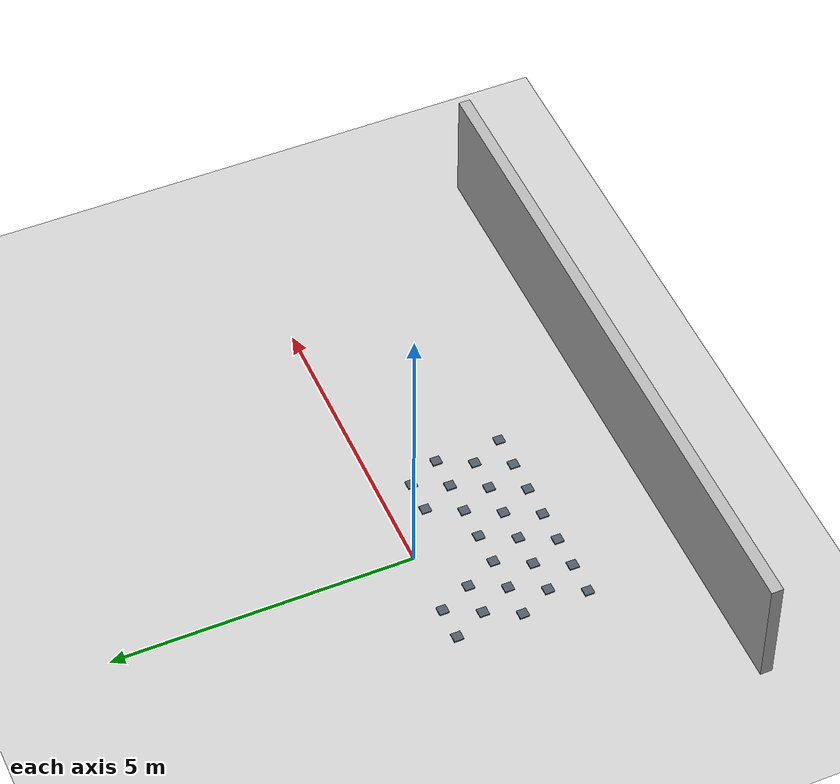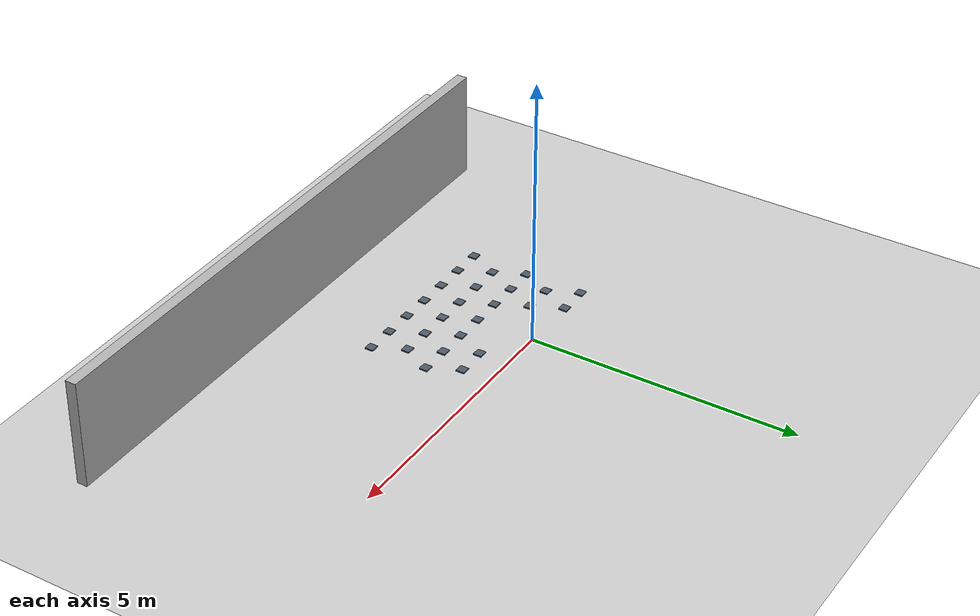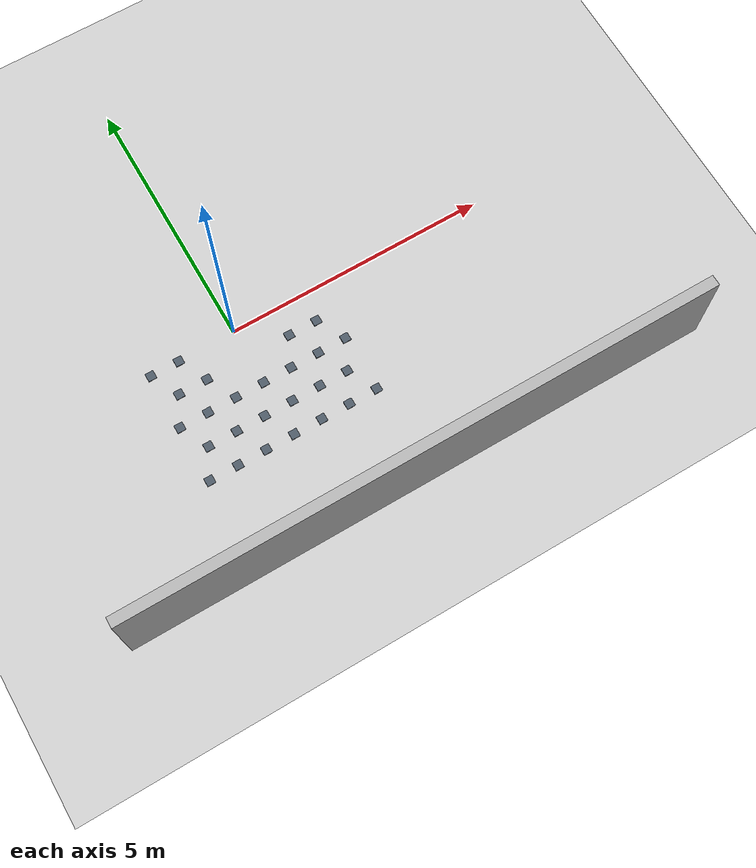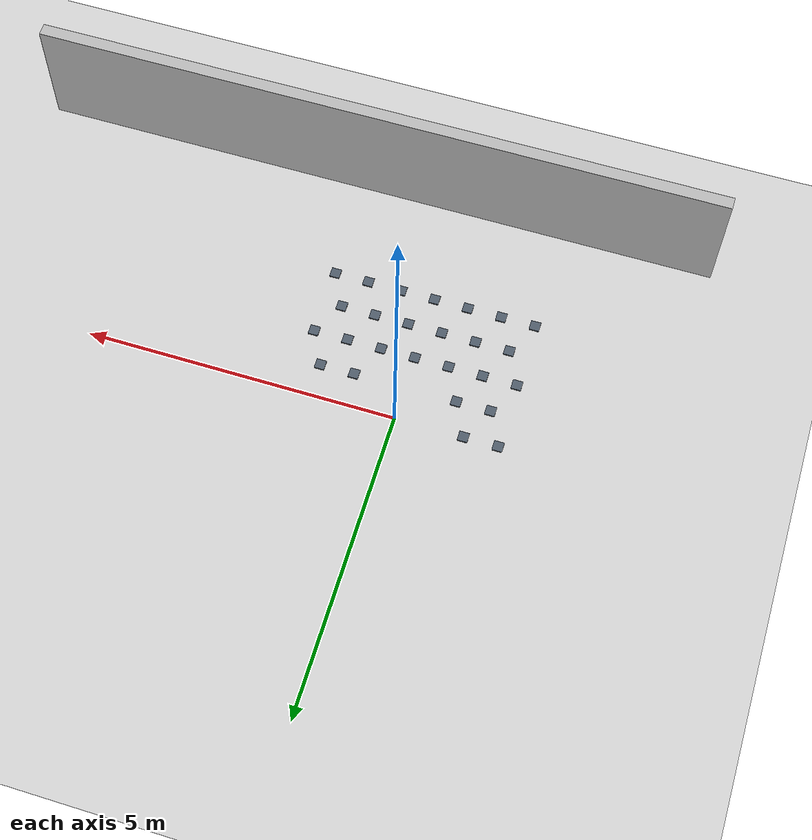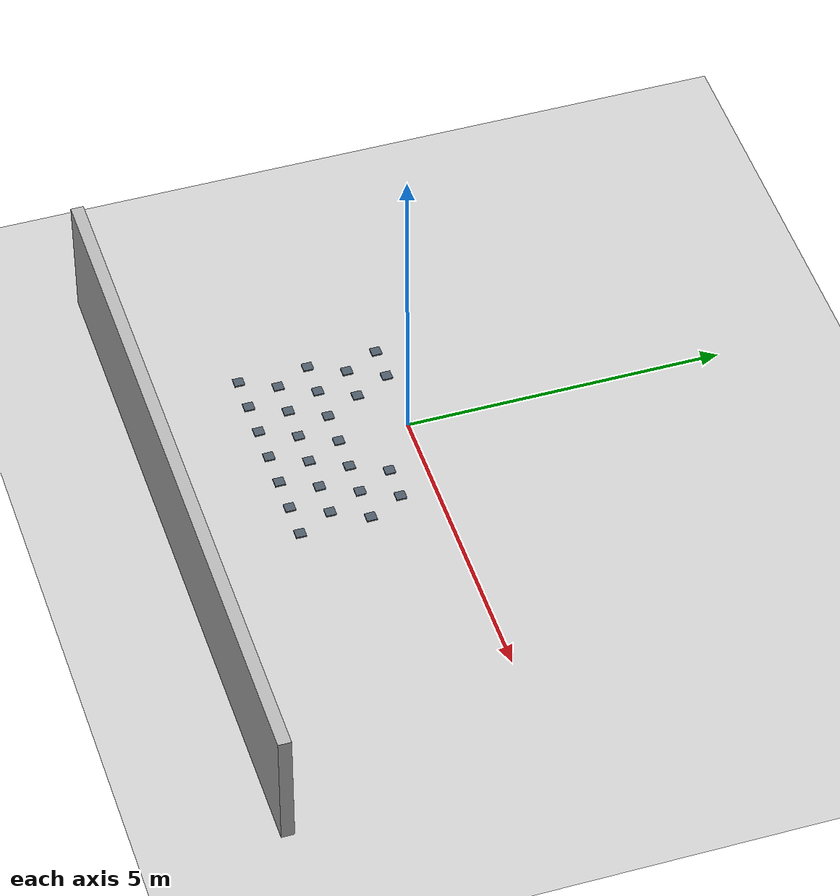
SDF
<sdf version="1.9">
 <world name="empty_ground">
  <model name="ground_plane">
   <static>true</static>
   <link name="link">
    <collision name="collision">
     <geometry><plane><normal>0 0 1</normal><size>100 100</size></plane></geometry>
     <surface>
      <friction>
       <ode><mu>1.5</mu><mu2>1.5</mu2></ode>
       <torsional><coefficient>0.0</coefficient></torsional>
      </friction>
     </surface>
    </collision>
    <visual name="visual">
     <geometry><plane><normal>0 0 1</normal><size>100 100</size></plane></geometry>
     <material><ambient>0.8 0.8 0.8 1</ambient><diffuse>0.8 0.8 0.8 1</diffuse></material>
    </visual>
   </link>
  </model>
  <model name="bump_1">
   <static>true</static>
   <pose>-1.650 -2.200 0.012 0 0 0</pose>
   <link name="link">
    <collision name="collision">
     <geometry><box><size>0.16 0.16 0.024</size></box></geometry>
     <surface>
      <friction>
       <ode><mu>1.5</mu><mu2>1.5</mu2></ode>
       <torsional><coefficient>0.0</coefficient></torsional>
      </friction>
     </surface>
    </collision>
    <visual name="visual">
     <geometry><box><size>0.16 0.16 0.024</size></box></geometry>
     <material><ambient>0.25 0.3 0.35 1</ambient><diffuse>0.30 0.35 0.4 1</diffuse></material>
    </visual>
   </link>
  </model>
  <model name="bump_2">
   <static>true</static>
   <pose>-1.380 -1.650 0.012 0 0 0</pose>
   <link name="link">
    <collision name="collision">
     <geometry><box><size>0.16 0.16 0.024</size></box></geometry>
     <surface>
      <friction>
       <ode><mu>1.5</mu><mu2>1.5</mu2></ode>
       <torsional><coefficient>0.0</coefficient></torsional>
      </friction>
     </surface>
    </collision>
    <visual name="visual">
     <geometry><box><size>0.16 0.16 0.024</size></box></geometry>
     <material><ambient>0.25 0.3 0.35 1</ambient><diffuse>0.30 0.35 0.4 1</diffuse></material>
    </visual>
   </link>
  </model>
  <model name="bump_3">
   <static>true</static>
   <pose>-1.650 -1.100 0.012 0 0 0</pose>
   <link name="link">
    <collision name="collision">
     <geometry><box><size>0.16 0.16 0.024</size></box></geometry>
     <surface>
      <friction>
       <ode><mu>1.5</mu><mu2>1.5</mu2></ode>
       <torsional><coefficient>0.0</coefficient></torsional>
      </friction>
     </surface>
    </collision>
    <visual name="visual">
     <geometry><box><size>0.16 0.16 0.024</size></box></geometry>
     <material><ambient>0.25 0.3 0.35 1</ambient><diffuse>0.30 0.35 0.4 1</diffuse></material>
    </visual>
   </link>
  </model>
  <model name="bump_4">
   <static>true</static>
   <pose>-1.380 -0.550 0.012 0 0 0</pose>
   <link name="link">
    <collision name="collision">
     <geometry><box><size>0.16 0.16 0.024</size></box></geometry>
     <surface>
      <friction>
       <ode><mu>1.5</mu><mu2>1.5</mu2></ode>
       <torsional><coefficient>0.0</coefficient></torsional>
      </friction>
     </surface>
    </collision>
    <visual name="visual">
     <geometry><box><size>0.16 0.16 0.024</size></box></geometry>
     <material><ambient>0.25 0.3 0.35 1</ambient><diffuse>0.30 0.35 0.4 1</diffuse></material>
    </visual>
   </link>
  </model>
  <model name="bump_5">
   <static>true</static>
   <pose>-1.650 0.000 0.012 0 0 0</pose>
   <link name="link">
    <collision name="collision">
     <geometry><box><size>0.16 0.16 0.024</size></box></geometry>
     <surface>
      <friction>
       <ode><mu>1.5</mu><mu2>1.5</mu2></ode>
       <torsional><coefficient>0.0</coefficient></torsional>
      </friction>
     </surface>
    </collision>
    <visual name="visual">
     <geometry><box><size>0.16 0.16 0.024</size></box></geometry>
     <material><ambient>0.25 0.3 0.35 1</ambient><diffuse>0.30 0.35 0.4 1</diffuse></material>
    </visual>
   </link>
  </model>
  <model name="bump_10">
   <static>true</static>
   <pose>-1.100 -2.200 0.012 0 0 0</pose>
   <link name="link">
    <collision name="collision">
     <geometry><box><size>0.16 0.16 0.024</size></box></geometry>
     <surface>
      <friction>
       <ode><mu>1.5</mu><mu2>1.5</mu2></ode>
       <torsional><coefficient>0.0</coefficient></torsional>
      </friction>
     </surface>
    </collision>
    <visual name="visual">
     <geometry><box><size>0.16 0.16 0.024</size></box></geometry>
     <material><ambient>0.25 0.3 0.35 1</ambient><diffuse>0.30 0.35 0.4 1</diffuse></material>
    </visual>
   </link>
  </model>
  <model name="bump_11">
   <static>true</static>
   <pose>-0.830 -1.650 0.012 0 0 0</pose>
   <link name="link">
    <collision name="collision">
     <geometry><box><size>0.16 0.16 0.024</size></box></geometry>
     <surface>
      <friction>
       <ode><mu>1.5</mu><mu2>1.5</mu2></ode>
       <torsional><coefficient>0.0</coefficient></torsional>
      </friction>
     </surface>
    </collision>
    <visual name="visual">
     <geometry><box><size>0.16 0.16 0.024</size></box></geometry>
     <material><ambient>0.25 0.3 0.35 1</ambient><diffuse>0.30 0.35 0.4 1</diffuse></material>
    </visual>
   </link>
  </model>
  <model name="bump_12">
   <static>true</static>
   <pose>-1.100 -1.100 0.012 0 0 0</pose>
   <link name="link">
    <collision name="collision">
     <geometry><box><size>0.16 0.16 0.024</size></box></geometry>
     <surface>
      <friction>
       <ode><mu>1.5</mu><mu2>1.5</mu2></ode>
       <torsional><coefficient>0.0</coefficient></torsional>
      </friction>
     </surface>
    </collision>
    <visual name="visual">
     <geometry><box><size>0.16 0.16 0.024</size></box></geometry>
     <material><ambient>0.25 0.3 0.35 1</ambient><diffuse>0.30 0.35 0.4 1</diffuse></material>
    </visual>
   </link>
  </model>
  <model name="bump_13">
   <static>true</static>
   <pose>-0.830 -0.550 0.012 0 0 0</pose>
   <link name="link">
    <collision name="collision">
     <geometry><box><size>0.16 0.16 0.024</size></box></geometry>
     <surface>
      <friction>
       <ode><mu>1.5</mu><mu2>1.5</mu2></ode>
       <torsional><coefficient>0.0</coefficient></torsional>
      </friction>
     </surface>
    </collision>
    <visual name="visual">
     <geometry><box><size>0.16 0.16 0.024</size></box></geometry>
     <material><ambient>0.25 0.3 0.35 1</ambient><diffuse>0.30 0.35 0.4 1</diffuse></material>
    </visual>
   </link>
  </model>
  <model name="bump_14">
   <static>true</static>
   <pose>-1.100 0.000 0.012 0 0 0</pose>
   <link name="link">
    <collision name="collision">
     <geometry><box><size>0.16 0.16 0.024</size></box></geometry>
     <surface>
      <friction>
       <ode><mu>1.5</mu><mu2>1.5</mu2></ode>
       <torsional><coefficient>0.0</coefficient></torsional>
      </friction>
     </surface>
    </collision>
    <visual name="visual">
     <geometry><box><size>0.16 0.16 0.024</size></box></geometry>
     <material><ambient>0.25 0.3 0.35 1</ambient><diffuse>0.30 0.35 0.4 1</diffuse></material>
    </visual>
   </link>
  </model>
  <model name="bump_19">
   <static>true</static>
   <pose>-0.550 -2.200 0.012 0 0 0</pose>
   <link name="link">
    <collision name="collision">
     <geometry><box><size>0.16 0.16 0.024</size></box></geometry>
     <surface>
      <friction>
       <ode><mu>1.5</mu><mu2>1.5</mu2></ode>
       <torsional><coefficient>0.0</coefficient></torsional>
      </friction>
     </surface>
    </collision>
    <visual name="visual">
     <geometry><box><size>0.16 0.16 0.024</size></box></geometry>
     <material><ambient>0.25 0.3 0.35 1</ambient><diffuse>0.30 0.35 0.4 1</diffuse></material>
    </visual>
   </link>
  </model>
  <model name="bump_20">
   <static>true</static>
   <pose>-0.280 -1.650 0.012 0 0 0</pose>
   <link name="link">
    <collision name="collision">
     <geometry><box><size>0.16 0.16 0.024</size></box></geometry>
     <surface>
      <friction>
       <ode><mu>1.5</mu><mu2>1.5</mu2></ode>
       <torsional><coefficient>0.0</coefficient></torsional>
      </friction>
     </surface>
    </collision>
    <visual name="visual">
     <geometry><box><size>0.16 0.16 0.024</size></box></geometry>
     <material><ambient>0.25 0.3 0.35 1</ambient><diffuse>0.30 0.35 0.4 1</diffuse></material>
    </visual>
   </link>
  </model>
  <model name="bump_21">
   <static>true</static>
   <pose>-0.550 -1.100 0.012 0 0 0</pose>
   <link name="link">
    <collision name="collision">
     <geometry><box><size>0.16 0.16 0.024</size></box></geometry>
     <surface>
      <friction>
       <ode><mu>1.5</mu><mu2>1.5</mu2></ode>
       <torsional><coefficient>0.0</coefficient></torsional>
      </friction>
     </surface>
    </collision>
    <visual name="visual">
     <geometry><box><size>0.16 0.16 0.024</size></box></geometry>
     <material><ambient>0.25 0.3 0.35 1</ambient><diffuse>0.30 0.35 0.4 1</diffuse></material>
    </visual>
   </link>
  </model>
  <model name="bump_25">
   <static>true</static>
   <pose>0.000 -2.200 0.012 0 0 0</pose>
   <link name="link">
    <collision name="collision">
     <geometry><box><size>0.16 0.16 0.024</size></box></geometry>
     <surface>
      <friction>
       <ode><mu>1.5</mu><mu2>1.5</mu2></ode>
       <torsional><coefficient>0.0</coefficient></torsional>
      </friction>
     </surface>
    </collision>
    <visual name="visual">
     <geometry><box><size>0.16 0.16 0.024</size></box></geometry>
     <material><ambient>0.25 0.3 0.35 1</ambient><diffuse>0.30 0.35 0.4 1</diffuse></material>
    </visual>
   </link>
  </model>
  <model name="bump_26">
   <static>true</static>
   <pose>0.270 -1.650 0.012 0 0 0</pose>
   <link name="link">
    <collision name="collision">
     <geometry><box><size>0.16 0.16 0.024</size></box></geometry>
     <surface>
      <friction>
       <ode><mu>1.5</mu><mu2>1.5</mu2></ode>
       <torsional><coefficient>0.0</coefficient></torsional>
      </friction>
     </surface>
    </collision>
    <visual name="visual">
     <geometry><box><size>0.16 0.16 0.024</size></box></geometry>
     <material><ambient>0.25 0.3 0.35 1</ambient><diffuse>0.30 0.35 0.4 1</diffuse></material>
    </visual>
   </link>
  </model>
  <model name="bump_27">
   <static>true</static>
   <pose>0.000 -1.100 0.012 0 0 0</pose>
   <link name="link">
    <collision name="collision">
     <geometry><box><size>0.16 0.16 0.024</size></box></geometry>
     <surface>
      <friction>
       <ode><mu>1.5</mu><mu2>1.5</mu2></ode>
       <torsional><coefficient>0.0</coefficient></torsional>
      </friction>
     </surface>
    </collision>
    <visual name="visual">
     <geometry><box><size>0.16 0.16 0.024</size></box></geometry>
     <material><ambient>0.25 0.3 0.35 1</ambient><diffuse>0.30 0.35 0.4 1</diffuse></material>
    </visual>
   </link>
  </model>
  <model name="bump_31">
   <static>true</static>
   <pose>0.550 -2.200 0.012 0 0 0</pose>
   <link name="link">
    <collision name="collision">
     <geometry><box><size>0.16 0.16 0.024</size></box></geometry>
     <surface>
      <friction>
       <ode><mu>1.5</mu><mu2>1.5</mu2></ode>
       <torsional><coefficient>0.0</coefficient></torsional>
      </friction>
     </surface>
    </collision>
    <visual name="visual">
     <geometry><box><size>0.16 0.16 0.024</size></box></geometry>
     <material><ambient>0.25 0.3 0.35 1</ambient><diffuse>0.30 0.35 0.4 1</diffuse></material>
    </visual>
   </link>
  </model>
  <model name="bump_32">
   <static>true</static>
   <pose>0.820 -1.650 0.012 0 0 0</pose>
   <link name="link">
    <collision name="collision">
     <geometry><box><size>0.16 0.16 0.024</size></box></geometry>
     <surface>
      <friction>
       <ode><mu>1.5</mu><mu2>1.5</mu2></ode>
       <torsional><coefficient>0.0</coefficient></torsional>
      </friction>
     </surface>
    </collision>
    <visual name="visual">
     <geometry><box><size>0.16 0.16 0.024</size></box></geometry>
     <material><ambient>0.25 0.3 0.35 1</ambient><diffuse>0.30 0.35 0.4 1</diffuse></material>
    </visual>
   </link>
  </model>
  <model name="bump_33">
   <static>true</static>
   <pose>0.550 -1.100 0.012 0 0 0</pose>
   <link name="link">
    <collision name="collision">
     <geometry><box><size>0.16 0.16 0.024</size></box></geometry>
     <surface>
      <friction>
       <ode><mu>1.5</mu><mu2>1.5</mu2></ode>
       <torsional><coefficient>0.0</coefficient></torsional>
      </friction>
     </surface>
    </collision>
    <visual name="visual">
     <geometry><box><size>0.16 0.16 0.024</size></box></geometry>
     <material><ambient>0.25 0.3 0.35 1</ambient><diffuse>0.30 0.35 0.4 1</diffuse></material>
    </visual>
   </link>
  </model>
  <model name="bump_34">
   <static>true</static>
   <pose>0.820 -0.550 0.012 0 0 0</pose>
   <link name="link">
    <collision name="collision">
     <geometry><box><size>0.16 0.16 0.024</size></box></geometry>
     <surface>
      <friction>
       <ode><mu>1.5</mu><mu2>1.5</mu2></ode>
       <torsional><coefficient>0.0</coefficient></torsional>
      </friction>
     </surface>
    </collision>
    <visual name="visual">
     <geometry><box><size>0.16 0.16 0.024</size></box></geometry>
     <material><ambient>0.25 0.3 0.35 1</ambient><diffuse>0.30 0.35 0.4 1</diffuse></material>
    </visual>
   </link>
  </model>
  <model name="bump_39">
   <static>true</static>
   <pose>1.100 -2.200 0.012 0 0 0</pose>
   <link name="link">
    <collision name="collision">
     <geometry><box><size>0.16 0.16 0.024</size></box></geometry>
     <surface>
      <friction>
       <ode><mu>1.5</mu><mu2>1.5</mu2></ode>
       <torsional><coefficient>0.0</coefficient></torsional>
      </friction>
     </surface>
    </collision>
    <visual name="visual">
     <geometry><box><size>0.16 0.16 0.024</size></box></geometry>
     <material><ambient>0.25 0.3 0.35 1</ambient><diffuse>0.30 0.35 0.4 1</diffuse></material>
    </visual>
   </link>
  </model>
  <model name="bump_40">
   <static>true</static>
   <pose>1.370 -1.650 0.012 0 0 0</pose>
   <link name="link">
    <collision name="collision">
     <geometry><box><size>0.16 0.16 0.024</size></box></geometry>
     <surface>
      <friction>
       <ode><mu>1.5</mu><mu2>1.5</mu2></ode>
       <torsional><coefficient>0.0</coefficient></torsional>
      </friction>
     </surface>
    </collision>
    <visual name="visual">
     <geometry><box><size>0.16 0.16 0.024</size></box></geometry>
     <material><ambient>0.25 0.3 0.35 1</ambient><diffuse>0.30 0.35 0.4 1</diffuse></material>
    </visual>
   </link>
  </model>
  <model name="bump_41">
   <static>true</static>
   <pose>1.100 -1.100 0.012 0 0 0</pose>
   <link name="link">
    <collision name="collision">
     <geometry><box><size>0.16 0.16 0.024</size></box></geometry>
     <surface>
      <friction>
       <ode><mu>1.5</mu><mu2>1.5</mu2></ode>
       <torsional><coefficient>0.0</coefficient></torsional>
      </friction>
     </surface>
    </collision>
    <visual name="visual">
     <geometry><box><size>0.16 0.16 0.024</size></box></geometry>
     <material><ambient>0.25 0.3 0.35 1</ambient><diffuse>0.30 0.35 0.4 1</diffuse></material>
    </visual>
   </link>
  </model>
  <model name="bump_42">
   <static>true</static>
   <pose>1.370 -0.550 0.012 0 0 0</pose>
   <link name="link">
    <collision name="collision">
     <geometry><box><size>0.16 0.16 0.024</size></box></geometry>
     <surface>
      <friction>
       <ode><mu>1.5</mu><mu2>1.5</mu2></ode>
       <torsional><coefficient>0.0</coefficient></torsional>
      </friction>
     </surface>
    </collision>
    <visual name="visual">
     <geometry><box><size>0.16 0.16 0.024</size></box></geometry>
     <material><ambient>0.25 0.3 0.35 1</ambient><diffuse>0.30 0.35 0.4 1</diffuse></material>
    </visual>
   </link>
  </model>
  <model name="bump_48">
   <static>true</static>
   <pose>1.650 -2.200 0.012 0 0 0</pose>
   <link name="link">
    <collision name="collision">
     <geometry><box><size>0.16 0.16 0.024</size></box></geometry>
     <surface>
      <friction>
       <ode><mu>1.5</mu><mu2>1.5</mu2></ode>
       <torsional><coefficient>0.0</coefficient></torsional>
      </friction>
     </surface>
    </collision>
    <visual name="visual">
     <geometry><box><size>0.16 0.16 0.024</size></box></geometry>
     <material><ambient>0.25 0.3 0.35 1</ambient><diffuse>0.30 0.35 0.4 1</diffuse></material>
    </visual>
   </link>
  </model>
  <model name="bump_50">
   <static>true</static>
   <pose>1.650 -1.100 0.012 0 0 0</pose>
   <link name="link">
    <collision name="collision">
     <geometry><box><size>0.16 0.16 0.024</size></box></geometry>
     <surface>
      <friction>
       <ode><mu>1.5</mu><mu2>1.5</mu2></ode>
       <torsional><coefficient>0.0</coefficient></torsional>
      </friction>
     </surface>
    </collision>
    <visual name="visual">
     <geometry><box><size>0.16 0.16 0.024</size></box></geometry>
     <material><ambient>0.25 0.3 0.35 1</ambient><diffuse>0.30 0.35 0.4 1</diffuse></material>
    </visual>
   </link>
  </model>
  <model name="wall_south">
   <static>true</static>
   <pose>1.500 -4.000 1.000 0 0 0</pose>
   <link name="link">
    <collision name="collision"><geometry><box><size>11.2 0.2 2.0</size></box></geometry></collision>
    <visual name="visual">
     <geometry><box><size>11.2 0.2 2.0</size></box></geometry>
     <material><ambient>0.6 0.6 0.6 1</ambient><diffuse>0.7 0.7 0.7 1</diffuse></material>
    </visual>
   </link>
  </model>
 </world>
</sdf>
